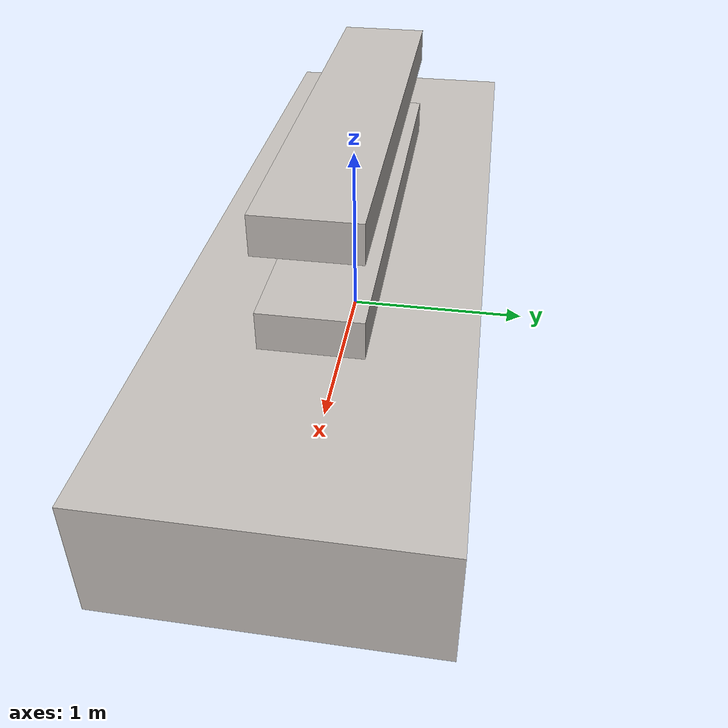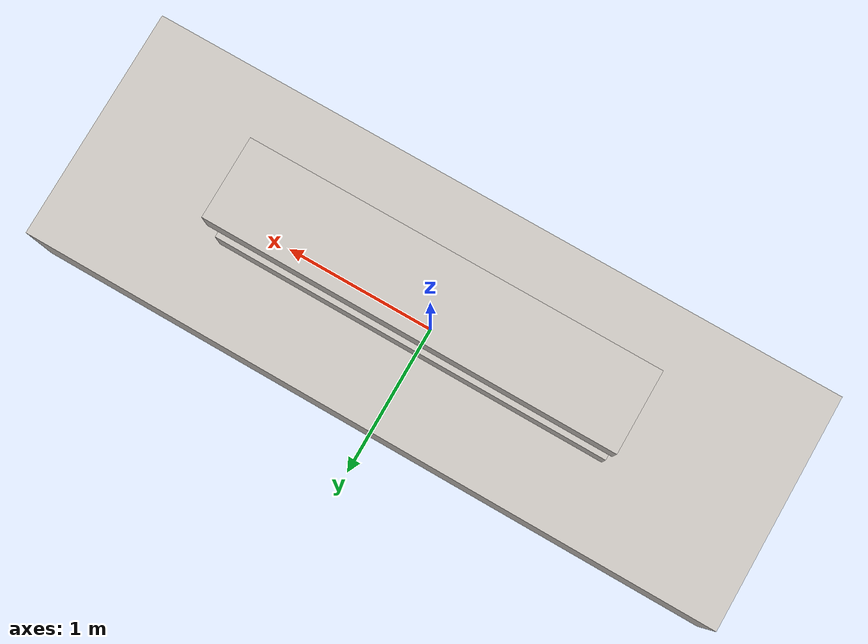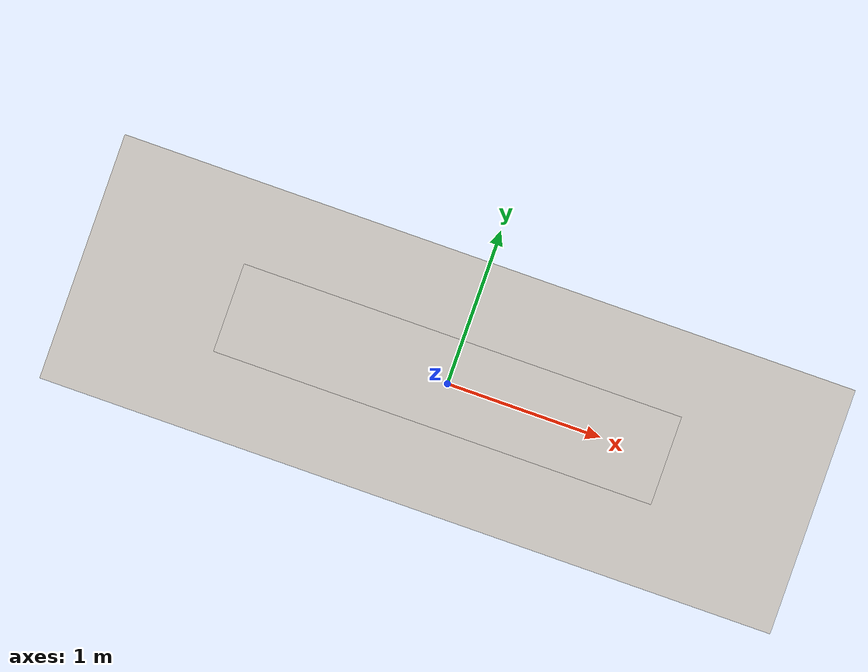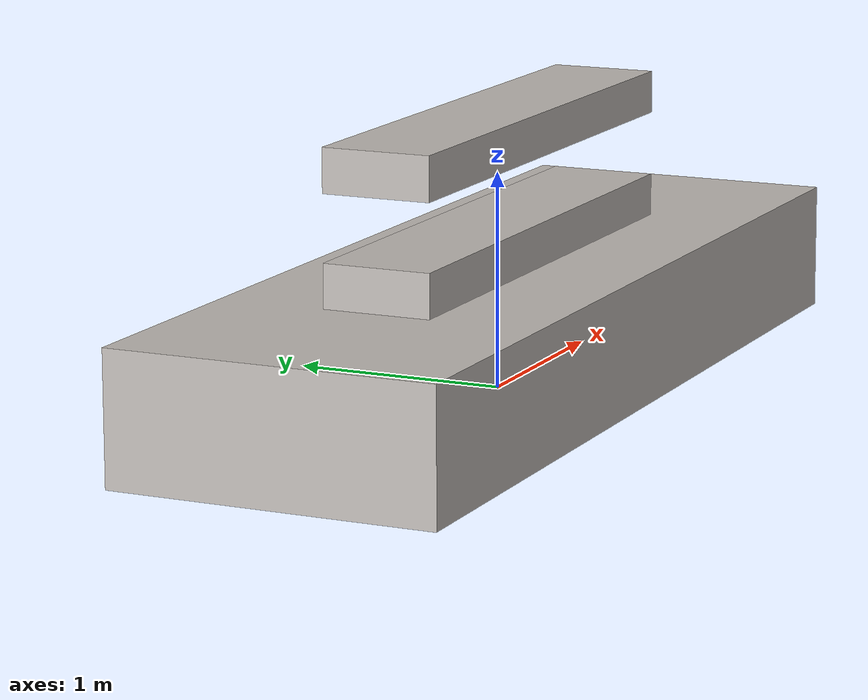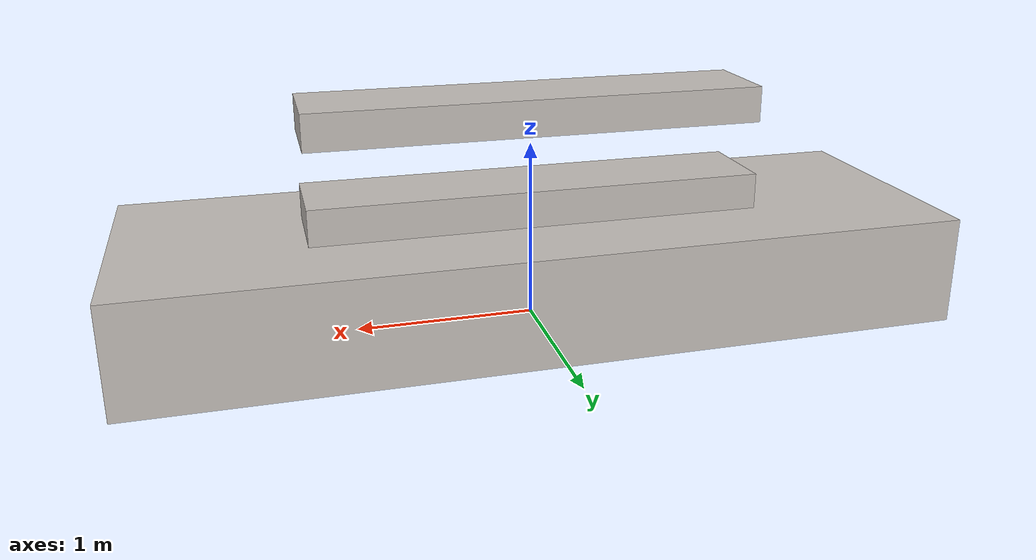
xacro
<?xml version="1.0"?>
<robot xmlns:xacro="http://www.ros.org/wiki/xacro"
       name="conveyor_belt" >

	<material name="metal_grey">
		<color rgba="0.768627450980392 0.749019607843137 0.729411764705882 1" />
	</material>
	<xacro:property name="metal" value="metal_grey"/>
	<xacro:property name="PI" value="3.1415926535897931"/>

  <!-- world link -->
  <link name="world" />

  <link name = "conveyor_belt_base">
    <visual>
      <origin xyz="0 0 0.3" rpy="0 0 0"/>
      <geometry>
        <box size = "4.5 1.5 0.6" />
      </geometry>
      <material name="${metal}"/>
    </visual>
    <collision>
      <origin xyz="0 0 0.3" rpy="0 0 0"/>
      <geometry>
        <box size = "4.5 1.5 0.6" />
      </geometry>
    </collision>
    <inertial>
      <origin xyz="0 0 0" rpy="0 0 0"/>
      <mass value="100"/>
      <inertia ixx="100" iyy="1781.5" izz="1784.72" ixy="0" iyz="0" ixz="0"/>
    </inertial>
  </link>
  <gazebo reference="conveyor_belt_base">
    <mu>1.0</mu>
    <mu2>1.0</mu2>
    <material>Gazebo/White</material>
  </gazebo>

  <link name = "conveyor_belt_fixed">
    <visual>
      <origin xyz="0 0 0.1" rpy="0 0 0"/>
      <geometry>
        <box size = "2.5 0.5 0.2" />
      </geometry>
      <material name="${metal}"/>
    </visual>
    <collision>
      <origin xyz="0 0 0.1" rpy="0 0 0"/>
      <geometry>
        <box size = "2.5 0.5 0.2" />
      </geometry>
    </collision>
    <inertial>
      <origin xyz="0 0 0" rpy="0 0 0"/>
      <mass value="100"/>
      <inertia ixx="100" iyy="1781.5" izz="1784.72" ixy="0" iyz="0" ixz="0"/>
    </inertial>
  </link>
  <gazebo reference="conveyor_belt_fixed">
    <mu>1.0</mu>
    <mu2>1.0</mu2>
    <material>Gazebo/White</material>
  </gazebo>

  <link name = "conveyor_belt_moving">
    <visual>
      <origin xyz="0 0 0.1" rpy="0 0 0"/>
      <geometry>
        <box size = "2.5 0.5 0.2" />
      </geometry>
      <material name="${metal}"/>
    </visual>
    <collision>
      <origin xyz="0 0 0.1" rpy="0 0 0"/>
      <geometry>
        <box size = "2.5 0.5 0.2" />
      </geometry>
    </collision>
    <inertial>
      <origin xyz="0 0 0" rpy="0 0 0"/>
      <mass value="100"/>
      <inertia ixx="100" iyy="1781.5" izz="1784.72" ixy="0" iyz="0" ixz="0"/>
    </inertial>
  </link>
  <gazebo reference="conveyor_belt_moving">
    <mu>1.0</mu>
    <mu2>1.0</mu2>
    <material>Gazebo/GreenTransparent</material>
  </gazebo>

  <joint name="conveyor_belt_fixed_base" type="fixed">
    <parent link="world" />
    <child link="conveyor_belt_base" />
    <origin xyz="0 0 0" rpy="0 0 0" />
  </joint>

  <joint name="conveyor_belt_fixed_joint" type="fixed">
    <parent link="conveyor_belt_base" />
    <child link="conveyor_belt_fixed" />
    <origin xyz="0 0 0.6" rpy="0 0 0" />
  </joint>

  <joint name = "belt_joint" type = "prismatic">
    <parent link = "conveyor_belt_fixed"/>
    <child link = "conveyor_belt_moving"/>
    <origin xyz = "0 0 0.5" rpy = "0 0 0"/>
    <limit effort = "30" velocity = "100" lower = "0" upper = "1.0" />
    <axis xyz = "1 0 0"/>
  </joint>

  <gazebo>
    <plugin name="conveyor_belt_plugin" filename="libROSConveyorBeltPlugin.so">
      <enable_topic>conveyor_enable</enable_topic>
      <population_rate_modifier_topic>population/rate_modifier</population_rate_modifier_topic>
      <link>conveyor_belt_moving</link>
      <power>0</power>
      <update_rate>20</update_rate>
    </plugin>
  </gazebo>

</robot>
